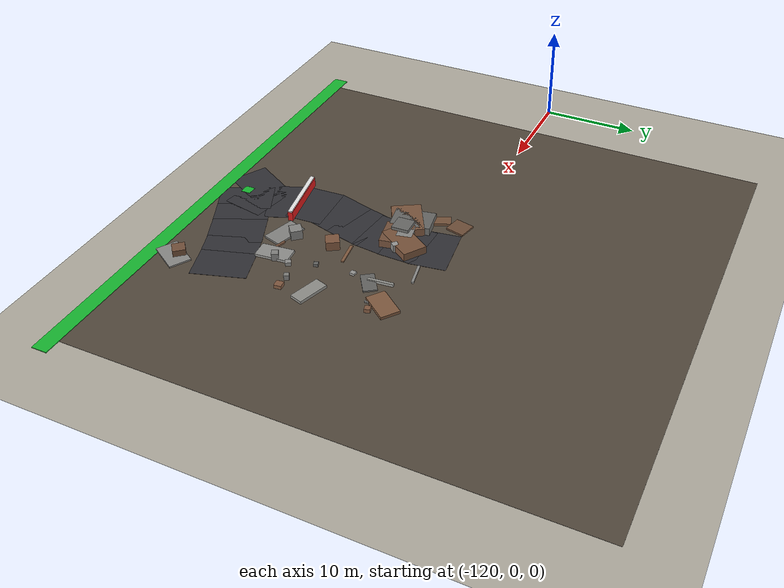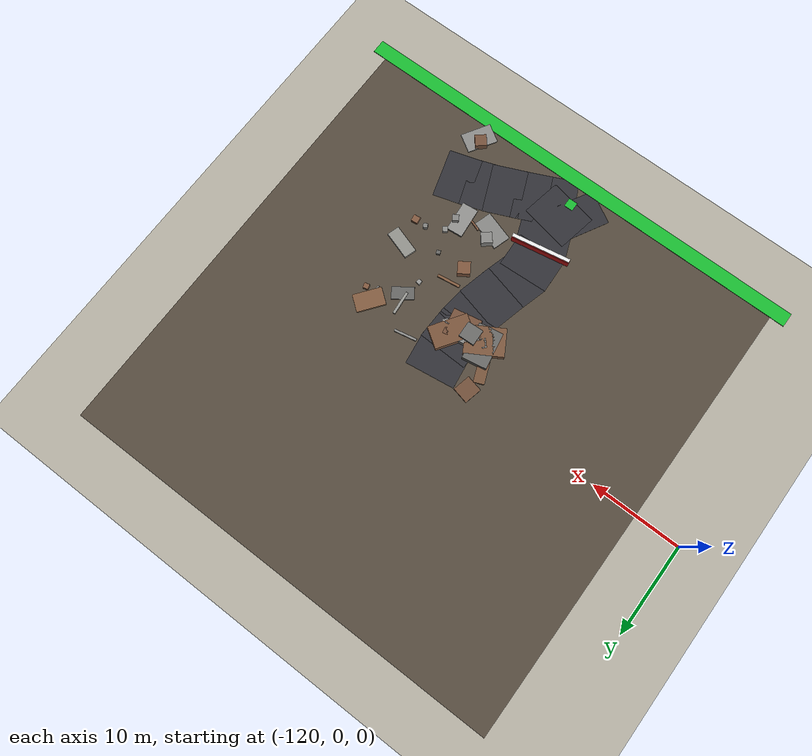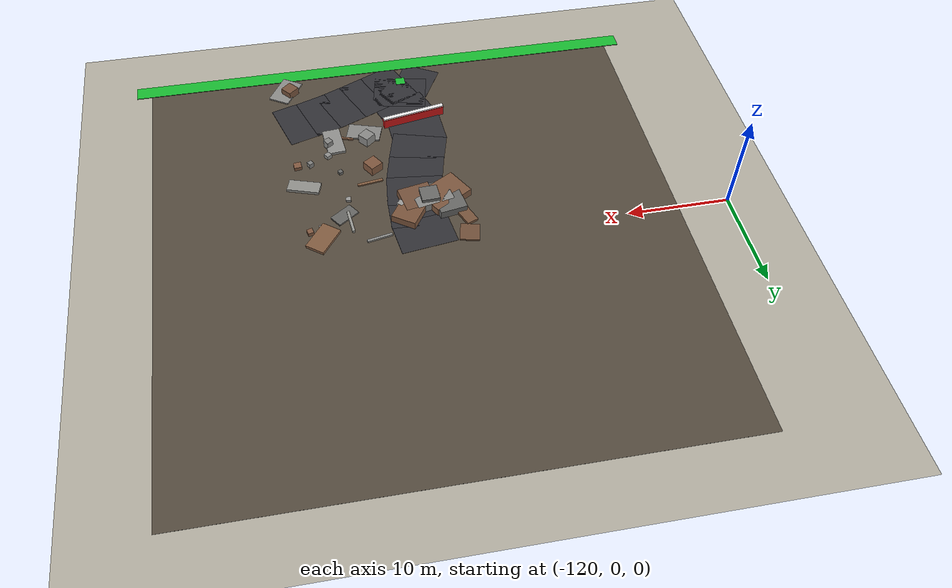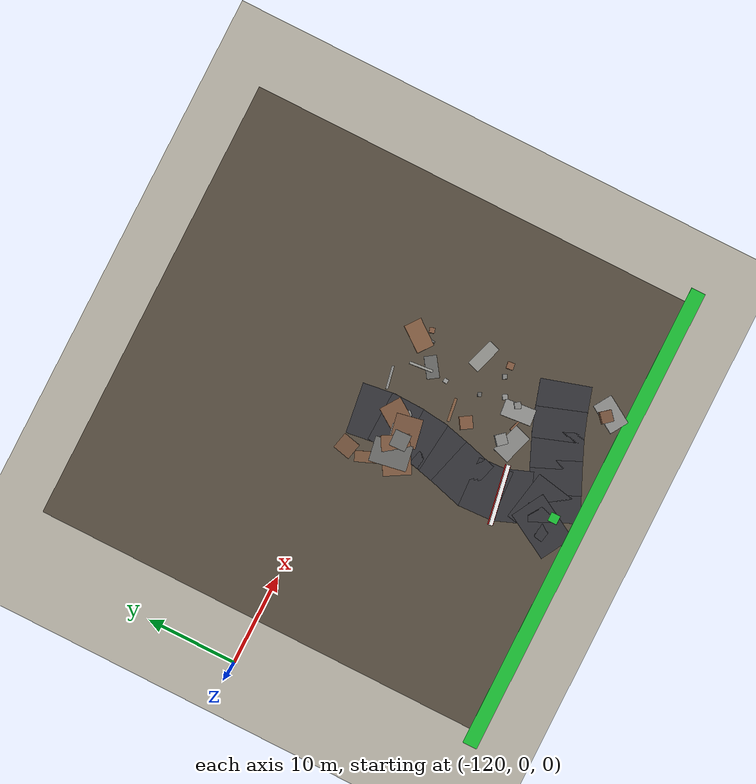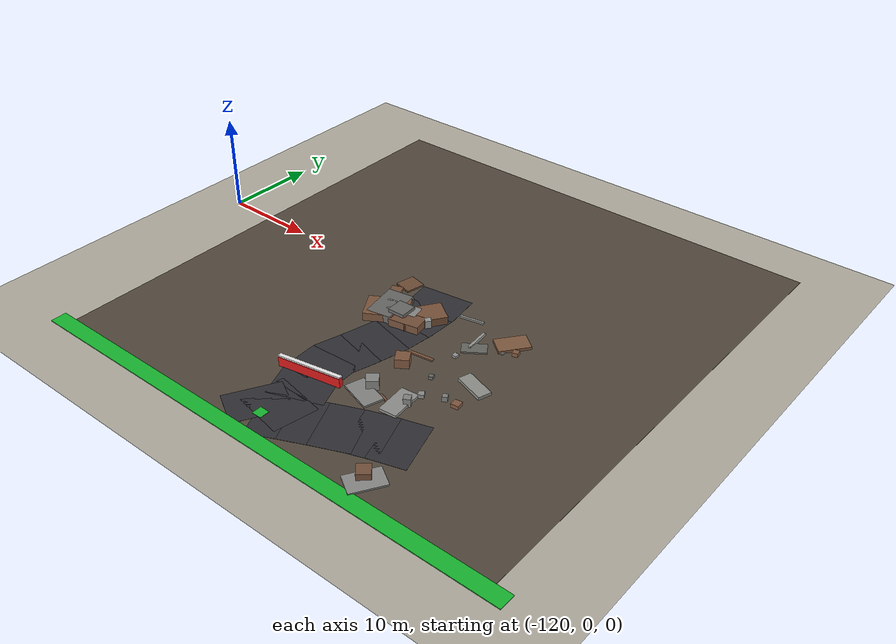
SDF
<sdf version="1.6">
 <world name="navitas_arena">
  <model name="ground_plane">
   <static>true</static>
   <link name="link">
    <collision name="collision">
     <geometry><plane><normal>0 0 1</normal><size>400 400</size></plane></geometry>
     <surface><friction><ode><mu>0.720</mu><mu2>0.720</mu2></ode></friction></surface>
    </collision>
    <visual name="visual">
     <cast_shadows>false</cast_shadows>
     <geometry><plane><normal>0 0 1</normal><size>400 400</size></plane></geometry>
     <material><ambient>0.720 0.700 0.650 1</ambient><diffuse>0.720 0.700 0.650 1</diffuse></material>
    </visual>
   </link>
  </model>
  <model name="gd_kolay">
   <static>true</static>
   <pose>-90.000 0.000 0.010 0 0 0.000</pose>
   <link name="link">
    <collision name="col"><geometry><box><size>50.000 50.000 0.020</size></box></geometry></collision>
    <visual name="vis">
     <geometry><box><size>50.000 50.000 0.020</size></box></geometry>
     <material><ambient>0.34 0.30 0.25 1</ambient><diffuse>0.34 0.30 0.25 1</diffuse></material>
    </visual>
   </link>
  </model>
  <model name="brd_kolay_S">
   <static>true</static>
   <pose>-90.000 -25.800 0.040 0 0 0.000</pose>
   <link name="link">
    <collision name="col"><geometry><box><size>53.200 1.600 0.080</size></box></geometry></collision>
    <visual name="vis">
     <geometry><box><size>53.200 1.600 0.080</size></box></geometry>
     <material><ambient>0.10 0.75 0.20 1</ambient><diffuse>0.10 0.75 0.20 1</diffuse></material>
    </visual>
   </link>
  </model>
  <model name="road_kolay_1_0">
   <static>true</static>
   <pose>-92.795 -22.266 0.040 0 0 2.633</pose>
   <link name="link">
    <collision name="col"><geometry><box><size>3.915 5.520 0.020</size></box></geometry></collision>
    <visual name="vis">
     <geometry><box><size>3.915 5.520 0.020</size></box></geometry>
     <material><ambient>0.20 0.20 0.22 1</ambient><diffuse>0.20 0.20 0.22 1</diffuse></material>
    </visual>
   </link>
  </model>
  <model name="road_kolay_2_0">
   <static>true</static>
   <pose>-91.145 -21.250 0.040 0 0 1.383</pose>
   <link name="link">
    <collision name="col"><geometry><box><size>4.463 5.520 0.020</size></box></geometry></collision>
    <visual name="vis">
     <geometry><box><size>4.463 5.520 0.020</size></box></geometry>
     <material><ambient>0.20 0.20 0.22 1</ambient><diffuse>0.20 0.20 0.22 1</diffuse></material>
    </visual>
   </link>
  </model>
  <model name="road_kolay_2_1">
   <static>true</static>
   <pose>-91.347 -18.111 0.040 0 0 1.938</pose>
   <link name="link">
    <collision name="col"><geometry><box><size>3.876 5.520 0.020</size></box></geometry></collision>
    <visual name="vis">
     <geometry><box><size>3.876 5.520 0.020</size></box></geometry>
     <material><ambient>0.20 0.20 0.22 1</ambient><diffuse>0.20 0.20 0.22 1</diffuse></material>
    </visual>
   </link>
  </model>
  <model name="road_kolay_2_2">
   <static>true</static>
   <pose>-91.954 -15.241 0.040 0 0 1.620</pose>
   <link name="link">
    <collision name="col"><geometry><box><size>3.866 5.520 0.020</size></box></geometry></collision>
    <visual name="vis">
     <geometry><box><size>3.866 5.520 0.020</size></box></geometry>
     <material><ambient>0.20 0.20 0.22 1</ambient><diffuse>0.20 0.20 0.22 1</diffuse></material>
    </visual>
   </link>
  </model>
  <model name="road_kolay_2_3">
   <static>true</static>
   <pose>-91.626 -12.340 0.040 0 0 1.296</pose>
   <link name="link">
    <collision name="col"><geometry><box><size>3.850 5.520 0.020</size></box></geometry></collision>
    <visual name="vis">
     <geometry><box><size>3.850 5.520 0.020</size></box></geometry>
     <material><ambient>0.20 0.20 0.22 1</ambient><diffuse>0.20 0.20 0.22 1</diffuse></material>
    </visual>
   </link>
  </model>
  <model name="road_kolay_2_4">
   <static>true</static>
   <pose>-90.866 -9.460 0.040 0 0 1.329</pose>
   <link name="link">
    <collision name="col"><geometry><box><size>3.908 5.520 0.020</size></box></geometry></collision>
    <visual name="vis">
     <geometry><box><size>3.908 5.520 0.020</size></box></geometry>
     <material><ambient>0.20 0.20 0.22 1</ambient><diffuse>0.20 0.20 0.22 1</diffuse></material>
    </visual>
   </link>
  </model>
  <model name="road_kolay_2_5">
   <static>true</static>
   <pose>-90.349 -6.600 0.040 0 0 1.460</pose>
   <link name="link">
    <collision name="col"><geometry><box><size>3.717 5.520 0.020</size></box></geometry></collision>
    <visual name="vis">
     <geometry><box><size>3.717 5.520 0.020</size></box></geometry>
     <material><ambient>0.20 0.20 0.22 1</ambient><diffuse>0.20 0.20 0.22 1</diffuse></material>
    </visual>
   </link>
  </model>
  <model name="road_kolay_2_6">
   <static>true</static>
   <pose>-90.156 -3.800 0.040 0 0 1.544</pose>
   <link name="link">
    <collision name="col"><geometry><box><size>3.701 5.520 0.020</size></box></geometry></collision>
    <visual name="vis">
     <geometry><box><size>3.701 5.520 0.020</size></box></geometry>
     <material><ambient>0.20 0.20 0.22 1</ambient><diffuse>0.20 0.20 0.22 1</diffuse></material>
    </visual>
   </link>
  </model>
  <model name="road_kolay_2_7">
   <static>true</static>
   <pose>-90.309 -1.000 0.040 0 0 1.706</pose>
   <link name="link">
    <collision name="col"><geometry><box><size>3.726 5.520 0.020</size></box></geometry></collision>
    <visual name="vis">
     <geometry><box><size>3.726 5.520 0.020</size></box></geometry>
     <material><ambient>0.20 0.20 0.22 1</ambient><diffuse>0.20 0.20 0.22 1</diffuse></material>
    </visual>
   </link>
  </model>
  <model name="road_kolay_3_0">
   <static>true</static>
   <pose>-90.162 -22.399 0.040 0 0 0.428</pose>
   <link name="link">
    <collision name="col"><geometry><box><size>3.795 5.520 0.020</size></box></geometry></collision>
    <visual name="vis">
     <geometry><box><size>3.795 5.520 0.020</size></box></geometry>
     <material><ambient>0.20 0.20 0.22 1</ambient><diffuse>0.20 0.20 0.22 1</diffuse></material>
    </visual>
   </link>
  </model>
  <model name="road_kolay_3_1">
   <static>true</static>
   <pose>-87.597 -21.236 0.040 0 0 0.423</pose>
   <link name="link">
    <collision name="col"><geometry><box><size>3.636 5.520 0.020</size></box></geometry></collision>
    <visual name="vis">
     <geometry><box><size>3.636 5.520 0.020</size></box></geometry>
     <material><ambient>0.20 0.20 0.22 1</ambient><diffuse>0.20 0.20 0.22 1</diffuse></material>
    </visual>
   </link>
  </model>
  <model name="road_kolay_3_2">
   <static>true</static>
   <pose>-84.981 -20.087 0.040 0 0 0.406</pose>
   <link name="link">
    <collision name="col"><geometry><box><size>3.878 5.520 0.020</size></box></geometry></collision>
    <visual name="vis">
     <geometry><box><size>3.878 5.520 0.020</size></box></geometry>
     <material><ambient>0.20 0.20 0.22 1</ambient><diffuse>0.20 0.20 0.22 1</diffuse></material>
    </visual>
   </link>
  </model>
  <model name="road_kolay_3_3">
   <static>true</static>
   <pose>-82.474 -19.102 0.040 0 0 0.336</pose>
   <link name="link">
    <collision name="col"><geometry><box><size>3.314 5.520 0.020</size></box></geometry></collision>
    <visual name="vis">
     <geometry><box><size>3.314 5.520 0.020</size></box></geometry>
     <material><ambient>0.20 0.20 0.22 1</ambient><diffuse>0.20 0.20 0.22 1</diffuse></material>
    </visual>
   </link>
  </model>
  <model name="road_kolay_3_4">
   <static>true</static>
   <pose>-79.985 -18.298 0.040 0 0 0.292</pose>
   <link name="link">
    <collision name="col"><geometry><box><size>3.718 5.520 0.020</size></box></geometry></collision>
    <visual name="vis">
     <geometry><box><size>3.718 5.520 0.020</size></box></geometry>
     <material><ambient>0.20 0.20 0.22 1</ambient><diffuse>0.20 0.20 0.22 1</diffuse></material>
    </visual>
   </link>
  </model>
  <model name="bar_kolay_2">
   <static>true</static>
   <pose>-91.881 -16.722 0.500 0 0 3.318</pose>
   <link name="link">
    <collision name="col"><geometry><box><size>6.520 0.500 1.000</size></box></geometry></collision>
    <visual name="vis">
     <geometry><box><size>6.520 0.500 1.000</size></box></geometry>
     <material><ambient>0.85 0.10 0.10 1</ambient><diffuse>0.85 0.10 0.10 1</diffuse></material>
    </visual>
   </link>
  </model>
  <model name="bar_kolay_2b">
   <static>true</static>
   <pose>-91.881 -16.722 1.000 0 0 3.318</pose>
   <link name="link">
    <collision name="col"><geometry><box><size>6.520 0.400 0.300</size></box></geometry></collision>
    <visual name="vis">
     <geometry><box><size>6.520 0.400 0.300</size></box></geometry>
     <material><ambient>0.95 0.95 0.95 1</ambient><diffuse>0.95 0.95 0.95 1</diffuse></material>
    </visual>
   </link>
  </model>
  <model name="blk_kolay_2_0_0">
   <static>true</static>
   <pose>-89.680 -4.037 0.425 0 0 0.979</pose>
   <link name="link">
    <collision name="col"><geometry><box><size>4.305 2.479 0.850</size></box></geometry></collision>
    <visual name="vis">
     <geometry><box><size>4.305 2.479 0.850</size></box></geometry>
     <material><ambient>0.49 0.34 0.24 1</ambient><diffuse>0.49 0.34 0.24 1</diffuse></material>
    </visual>
   </link>
  </model>
  <model name="blk_kolay_2_0_1">
   <static>true</static>
   <pose>-90.326 -5.068 0.425 0 0 0.192</pose>
   <link name="link">
    <collision name="col"><geometry><box><size>3.158 2.848 0.850</size></box></geometry></collision>
    <visual name="vis">
     <geometry><box><size>3.158 2.848 0.850</size></box></geometry>
     <material><ambient>0.47 0.33 0.24 1</ambient><diffuse>0.47 0.33 0.24 1</diffuse></material>
    </visual>
   </link>
  </model>
  <model name="blk_kolay_2_0_2">
   <static>true</static>
   <pose>-91.843 -4.600 0.425 0 0 0.201</pose>
   <link name="link">
    <collision name="col"><geometry><box><size>3.688 1.558 0.850</size></box></geometry></collision>
    <visual name="vis">
     <geometry><box><size>3.688 1.558 0.850</size></box></geometry>
     <material><ambient>0.55 0.55 0.54 1</ambient><diffuse>0.55 0.55 0.54 1</diffuse></material>
    </visual>
   </link>
  </model>
  <model name="blk_kolay_2_0_3">
   <static>true</static>
   <pose>-93.152 -4.712 0.425 0 0 1.744</pose>
   <link name="link">
    <collision name="col"><geometry><box><size>4.064 2.712 0.850</size></box></geometry></collision>
    <visual name="vis">
     <geometry><box><size>4.064 2.712 0.850</size></box></geometry>
     <material><ambient>0.42 0.42 0.41 1</ambient><diffuse>0.42 0.42 0.41 1</diffuse></material>
    </visual>
   </link>
  </model>
  <model name="blk_kolay_2_0_4">
   <static>true</static>
   <pose>-91.478 -4.968 0.592 0 0 0.040</pose>
   <link name="link">
    <collision name="col"><geometry><box><size>1.776 1.776 1.183</size></box></geometry></collision>
    <visual name="vis">
     <geometry><box><size>1.776 1.776 1.183</size></box></geometry>
     <material><ambient>0.43 0.43 0.42 1</ambient><diffuse>0.43 0.43 0.42 1</diffuse></material>
    </visual>
   </link>
  </model>
  <model name="blk_kolay_2_0_5">
   <static>true</static>
   <pose>-92.875 -4.794 0.425 0 0 2.326</pose>
   <link name="link">
    <collision name="col"><geometry><box><size>1.050 1.050 0.850</size></box></geometry></collision>
    <visual name="vis">
     <geometry><box><size>1.050 1.050 0.850</size></box></geometry>
     <material><ambient>0.50 0.50 0.49 1</ambient><diffuse>0.50 0.50 0.49 1</diffuse></material>
    </visual>
   </link>
  </model>
  <model name="blk_kolay_2_0_6">
   <static>true</static>
   <pose>-88.638 -4.481 0.425 0 0 2.369</pose>
   <link name="link">
    <collision name="col"><geometry><box><size>0.603 0.603 0.850</size></box></geometry></collision>
    <visual name="vis">
     <geometry><box><size>0.603 0.603 0.850</size></box></geometry>
     <material><ambient>0.62 0.62 0.61 1</ambient><diffuse>0.62 0.62 0.61 1</diffuse></material>
    </visual>
   </link>
  </model>
  <model name="blk_kolay_2_0_7">
   <static>true</static>
   <pose>-93.024 -5.268 0.425 0 0 0.526</pose>
   <link name="link">
    <collision name="col"><geometry><box><size>4.241 3.029 0.850</size></box></geometry></collision>
    <visual name="vis">
     <geometry><box><size>4.241 3.029 0.850</size></box></geometry>
     <material><ambient>0.50 0.35 0.25 1</ambient><diffuse>0.50 0.35 0.25 1</diffuse></material>
    </visual>
   </link>
  </model>
  <model name="deb_kolay_11">
   <static>true</static>
   <pose>-86.527 -15.537 0.107 0 0 2.840</pose>
   <link name="link">
    <collision name="col"><geometry><box><size>3.424 1.975 0.214</size></box></geometry></collision>
    <visual name="vis">
     <geometry><box><size>3.424 1.975 0.214</size></box></geometry>
     <material><ambient>0.54 0.54 0.53 1</ambient><diffuse>0.54 0.54 0.53 1</diffuse></material>
    </visual>
   </link>
  </model>
  <model name="deb_kolay_26">
   <static>true</static>
   <pose>-86.643 -14.299 0.508 0 0 2.278</pose>
   <link name="link">
    <collision name="col"><geometry><box><size>1.182 1.182 1.017</size></box></geometry></collision>
    <visual name="vis">
     <geometry><box><size>1.182 1.182 1.017</size></box></geometry>
     <material><ambient>0.55 0.55 0.54 1</ambient><diffuse>0.55 0.55 0.54 1</diffuse></material>
    </visual>
   </link>
  </model>
  <model name="deb_kolay_32">
   <static>true</static>
   <pose>-79.690 -2.750 0.214 0 0 1.833</pose>
   <link name="link">
    <collision name="col"><geometry><box><size>0.569 0.569 0.427</size></box></geometry></collision>
    <visual name="vis">
     <geometry><box><size>0.569 0.569 0.427</size></box></geometry>
     <material><ambient>0.52 0.36 0.26 1</ambient><diffuse>0.52 0.36 0.26 1</diffuse></material>
    </visual>
   </link>
  </model>
  <model name="deb_kolay_33">
   <static>true</static>
   <pose>-83.762 -6.415 0.131 0 0 3.033</pose>
   <link name="link">
    <collision name="col"><geometry><box><size>0.479 0.479 0.262</size></box></geometry></collision>
    <visual name="vis">
     <geometry><box><size>0.479 0.479 0.262</size></box></geometry>
     <material><ambient>0.61 0.61 0.60 1</ambient><diffuse>0.61 0.61 0.60 1</diffuse></material>
    </visual>
   </link>
  </model>
  <model name="deb_kolay_39">
   <static>true</static>
   <pose>-79.681 -8.795 0.161 0 0 2.831</pose>
   <link name="link">
    <collision name="col"><geometry><box><size>3.191 1.365 0.322</size></box></geometry></collision>
    <visual name="vis">
     <geometry><box><size>3.191 1.365 0.322</size></box></geometry>
     <material><ambient>0.58 0.58 0.56 1</ambient><diffuse>0.58 0.58 0.56 1</diffuse></material>
    </visual>
   </link>
  </model>
  <model name="deb_kolay_46">
   <static>true</static>
   <pose>-94.616 -2.538 0.143 0 0 1.954</pose>
   <link name="link">
    <collision name="col"><geometry><box><size>2.390 1.179 0.285</size></box></geometry></collision>
    <visual name="vis">
     <geometry><box><size>2.390 1.179 0.285</size></box></geometry>
     <material><ambient>0.48 0.34 0.24 1</ambient><diffuse>0.48 0.34 0.24 1</diffuse></material>
    </visual>
   </link>
  </model>
  <model name="deb_kolay_52">
   <static>true</static>
   <pose>-83.432 -10.201 0.172 0 0 0.364</pose>
   <link name="link">
    <collision name="col"><geometry><box><size>0.434 0.434 0.345</size></box></geometry></collision>
    <visual name="vis">
     <geometry><box><size>0.434 0.434 0.345</size></box></geometry>
     <material><ambient>0.41 0.41 0.40 1</ambient><diffuse>0.41 0.41 0.40 1</diffuse></material>
    </visual>
   </link>
  </model>
  <model name="deb_kolay_54">
   <static>true</static>
   <pose>-86.716 -10.249 0.476 0 0 0.569</pose>
   <link name="link">
    <collision name="col"><geometry><box><size>1.357 1.357 0.952</size></box></geometry></collision>
    <visual name="vis">
     <geometry><box><size>1.357 1.357 0.952</size></box></geometry>
     <material><ambient>0.51 0.35 0.25 1</ambient><diffuse>0.51 0.35 0.25 1</diffuse></material>
    </visual>
   </link>
  </model>
  <model name="deb_kolay_56">
   <static>true</static>
   <pose>-83.619 -3.452 0.157 0 0 1.663</pose>
   <link name="link">
    <collision name="col"><geometry><box><size>2.580 0.268 0.314</size></box></geometry></collision>
    <visual name="vis">
     <geometry><box><size>2.580 0.268 0.314</size></box></geometry>
     <material><ambient>0.61 0.61 0.59 1</ambient><diffuse>0.61 0.61 0.59 1</diffuse></material>
    </visual>
   </link>
  </model>
  <model name="deb_kolay_61">
   <static>true</static>
   <pose>-79.109 -23.392 0.092 0 0 1.020</pose>
   <link name="link">
    <collision name="col"><geometry><box><size>3.402 2.186 0.183</size></box></geometry></collision>
    <visual name="vis">
     <geometry><box><size>3.402 2.186 0.183</size></box></geometry>
     <material><ambient>0.56 0.56 0.55 1</ambient><diffuse>0.56 0.56 0.55 1</diffuse></material>
    </visual>
   </link>
  </model>
  <model name="deb_kolay_67">
   <static>true</static>
   <pose>-80.807 -1.791 0.157 0 0 0.918</pose>
   <link name="link">
    <collision name="col"><geometry><box><size>3.169 1.939 0.315</size></box></geometry></collision>
    <visual name="vis">
     <geometry><box><size>3.169 1.939 0.315</size></box></geometry>
     <material><ambient>0.52 0.37 0.26 1</ambient><diffuse>0.52 0.37 0.26 1</diffuse></material>
    </visual>
   </link>
  </model>
  <model name="deb_kolay_68">
   <static>true</static>
   <pose>-86.159 -8.368 0.088 0 0 0.137</pose>
   <link name="link">
    <collision name="col"><geometry><box><size>2.543 0.297 0.176</size></box></geometry></collision>
    <visual name="vis">
     <geometry><box><size>2.543 0.297 0.176</size></box></geometry>
     <material><ambient>0.52 0.37 0.26 1</ambient><diffuse>0.52 0.37 0.26 1</diffuse></material>
    </visual>
   </link>
  </model>
  <model name="deb_kolay_71">
   <static>true</static>
   <pose>-83.282 -14.656 0.147 0 0 1.665</pose>
   <link name="link">
    <collision name="col"><geometry><box><size>3.372 1.784 0.294</size></box></geometry></collision>
    <visual name="vis">
     <geometry><box><size>3.372 1.784 0.294</size></box></geometry>
     <material><ambient>0.58 0.58 0.57 1</ambient><diffuse>0.58 0.58 0.57 1</diffuse></material>
    </visual>
   </link>
  </model>
  <model name="deb_kolay_78">
   <static>true</static>
   <pose>-83.142 -4.449 0.090 0 0 0.604</pose>
   <link name="link">
    <collision name="col"><geometry><box><size>2.410 1.351 0.180</size></box></geometry></collision>
    <visual name="vis">
     <geometry><box><size>2.410 1.351 0.180</size></box></geometry>
     <material><ambient>0.41 0.41 0.40 1</ambient><diffuse>0.41 0.41 0.40 1</diffuse></material>
    </visual>
   </link>
  </model>
  <model name="deb_kolay_99">
   <static>true</static>
   <pose>-80.598 -11.710 0.265 0 0 0.477</pose>
   <link name="link">
    <collision name="col"><geometry><box><size>0.495 0.495 0.530</size></box></geometry></collision>
    <visual name="vis">
     <geometry><box><size>0.495 0.495 0.530</size></box></geometry>
     <material><ambient>0.51 0.51 0.50 1</ambient><diffuse>0.51 0.51 0.50 1</diffuse></material>
    </visual>
   </link>
  </model>
  <model name="deb_kolay_105">
   <static>true</static>
   <pose>-94.516 -0.249 0.098 0 0 2.920</pose>
   <link name="link">
    <collision name="col"><geometry><box><size>1.853 1.977 0.196</size></box></geometry></collision>
    <visual name="vis">
     <geometry><box><size>1.853 1.977 0.196</size></box></geometry>
     <material><ambient>0.45 0.32 0.23 1</ambient><diffuse>0.45 0.32 0.23 1</diffuse></material>
    </visual>
   </link>
  </model>
  <model name="deb_kolay_114">
   <static>true</static>
   <pose>-83.905 -15.237 0.095 0 0 2.812</pose>
   <link name="link">
    <collision name="col"><geometry><box><size>2.942 0.202 0.190</size></box></geometry></collision>
    <visual name="vis">
     <geometry><box><size>2.942 0.202 0.190</size></box></geometry>
     <material><ambient>0.53 0.37 0.27 1</ambient><diffuse>0.53 0.37 0.27 1</diffuse></material>
    </visual>
   </link>
  </model>
  <model name="deb_kolay_115">
   <static>true</static>
   <pose>-80.599 -2.225 0.083 0 0 1.511</pose>
   <link name="link">
    <collision name="col"><geometry><box><size>2.700 0.162 0.165</size></box></geometry></collision>
    <visual name="vis">
     <geometry><box><size>2.700 0.162 0.165</size></box></geometry>
     <material><ambient>0.53 0.53 0.52 1</ambient><diffuse>0.53 0.53 0.52 1</diffuse></material>
    </visual>
   </link>
  </model>
  <model name="deb_kolay_117">
   <static>true</static>
   <pose>-81.540 -2.049 0.141 0 0 2.738</pose>
   <link name="link">
    <collision name="col"><geometry><box><size>0.757 0.757 0.282</size></box></geometry></collision>
    <visual name="vis">
     <geometry><box><size>0.757 0.757 0.282</size></box></geometry>
     <material><ambient>0.48 0.34 0.24 1</ambient><diffuse>0.48 0.34 0.24 1</diffuse></material>
    </visual>
   </link>
  </model>
  <model name="deb_kolay_118">
   <static>true</static>
   <pose>-86.075 -1.043 0.106 0 0 0.196</pose>
   <link name="link">
    <collision name="col"><geometry><box><size>2.507 0.256 0.211</size></box></geometry></collision>
    <visual name="vis">
     <geometry><box><size>2.507 0.256 0.211</size></box></geometry>
     <material><ambient>0.56 0.56 0.55 1</ambient><diffuse>0.56 0.56 0.55 1</diffuse></material>
    </visual>
   </link>
  </model>
  <model name="deb_kolay_125">
   <static>true</static>
   <pose>-79.564 -23.025 0.411 0 0 0.706</pose>
   <link name="link">
    <collision name="col"><geometry><box><size>1.265 1.265 0.821</size></box></geometry></collision>
    <visual name="vis">
     <geometry><box><size>1.265 1.265 0.821</size></box></geometry>
     <material><ambient>0.47 0.33 0.24 1</ambient><diffuse>0.47 0.33 0.24 1</diffuse></material>
    </visual>
   </link>
  </model>
  <model name="deb_kolay_128">
   <static>true</static>
   <pose>-82.473 -12.679 0.208 0 0 0.566</pose>
   <link name="link">
    <collision name="col"><geometry><box><size>0.558 0.558 0.415</size></box></geometry></collision>
    <visual name="vis">
     <geometry><box><size>0.558 0.558 0.415</size></box></geometry>
     <material><ambient>0.57 0.57 0.56 1</ambient><diffuse>0.57 0.57 0.56 1</diffuse></material>
    </visual>
   </link>
  </model>
  <model name="deb_kolay_133">
   <static>true</static>
   <pose>-79.313 -11.731 0.200 0 0 0.115</pose>
   <link name="link">
    <collision name="col"><geometry><box><size>0.748 0.748 0.400</size></box></geometry></collision>
    <visual name="vis">
     <geometry><box><size>0.748 0.748 0.400</size></box></geometry>
     <material><ambient>0.52 0.36 0.26 1</ambient><diffuse>0.52 0.36 0.26 1</diffuse></material>
    </visual>
   </link>
  </model>
  <model name="chic_kolay_0">
   <static>true</static>
   <pose>-82.694 -14.228 0.425 0 0 2.100</pose>
   <link name="link">
    <collision name="col"><geometry><box><size>0.684 0.684 0.850</size></box></geometry></collision>
    <visual name="vis">
     <geometry><box><size>0.684 0.684 0.850</size></box></geometry>
     <material><ambient>0.53 0.53 0.52 1</ambient><diffuse>0.53 0.53 0.52 1</diffuse></material>
    </visual>
   </link>
  </model>
  <model name="kb_kolay">
   <static>true</static>
   <pose>-91.478 -23.000 0.070 0 0 0.000</pose>
   <link name="link">
    <collision name="col"><geometry><box><size>1.000 1.000 0.040</size></box></geometry></collision>
    <visual name="vis">
     <geometry><box><size>1.000 1.000 0.040</size></box></geometry>
     <material><ambient>0.10 0.75 0.20 1</ambient><diffuse>0.10 0.75 0.20 1</diffuse></material>
    </visual>
   </link>
  </model>
 </world>
</sdf>
